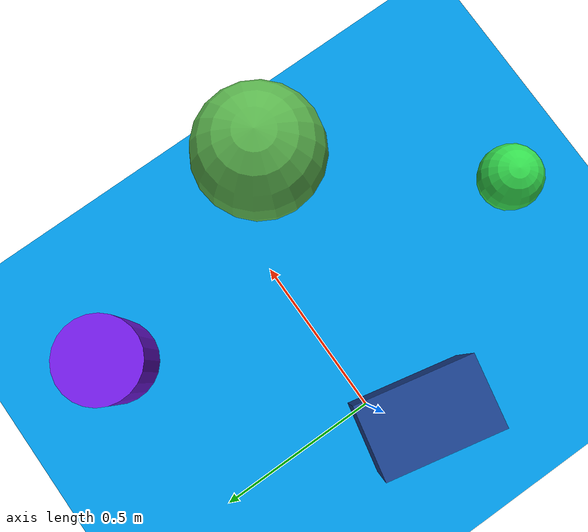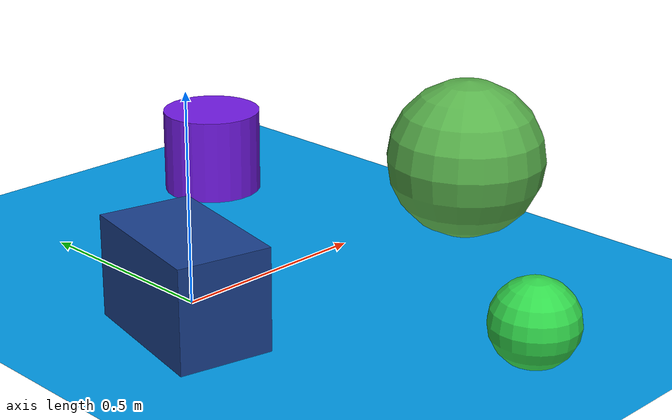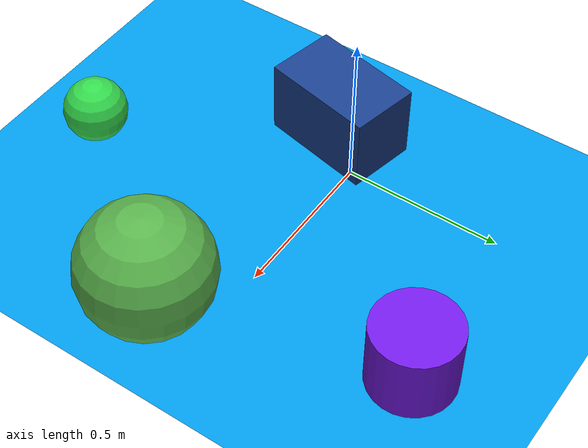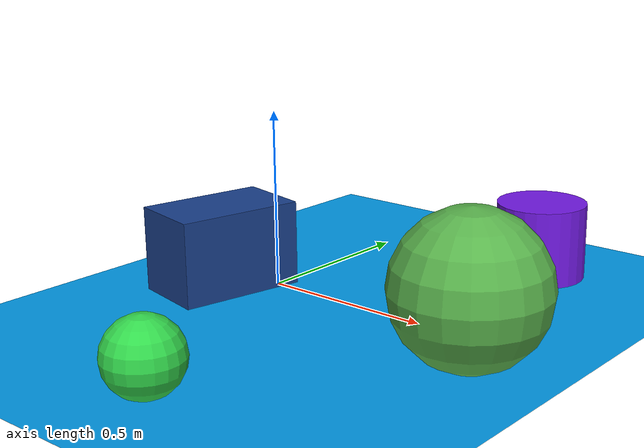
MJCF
<mujoco>
   <asset>
<texture type="skybox" builtin="gradient" rgb1="0.8 0.4 0.2" rgb2="1.0 0.8 0.3" width="256" height="256"/>
<texture name="checker_0" builtin="checker" rgb1="0.3 0.8 0.6" rgb2="0.4 0.6 0.0" width="200" height="200"/>
<texture name="checker_1" builtin="checker" rgb1="0.0 0.4 0.9" rgb2="0.2 0.1 0.2" width="200" height="200"/>
<texture name="checker_2" builtin="checker" rgb1="0.3 0.8 0.1" rgb2="0.1 0.9 0.5" width="200" height="200"/>
<texture name="checker_3" builtin="checker" rgb1="0.4 0.1 1.0" rgb2="0.5 0.1 0.8" width="200" height="200"/><material name="checker_0_mat" reflectance="0" texrepeat="9 9" texture="checker_0" texuniform="false" />
<material name="checker_1_mat" reflectance="0" texrepeat="8 8" texture="checker_1" texuniform="false" />
<material name="checker_2_mat" reflectance="0" texrepeat="5 5" texture="checker_2" texuniform="false" />
<material name="checker_3_mat" reflectance="0" texrepeat="7 7" texture="checker_3" texuniform="false" />
   </asset>

   <worldbody>
      <light diffuse=".9 .9 .9" pos="0 0 3" dir="0 0 -1"/>
     <geom type="plane" size="1 1 0.1" rgba="0.0 0.6 0.9 1"/>
<geom type="sphere" pos="0.77 -0.16 0.2" size="0.2 0.2 0.2" material="checker_0_mat" euler="0 0 70" />
<geom type="box" pos="-0.11 -0.11 0.12" size="0.18 0.11 0.12" material="checker_1_mat" euler="0 0 78" />
<geom type="sphere" pos="0.3 -0.74 0.1" size="0.1 0.1 0.1" material="checker_2_mat" euler="0 0 64" />
<geom type="cylinder" pos="0.54 0.54 0.11" size="0.13 0.11 0.11" material="checker_3_mat" euler="0 0 70" /><camera euler="60 0 180" fovy="60" name="camera1" pos="-0.2 -1.5 1"></camera>   </worldbody>
</mujoco>
